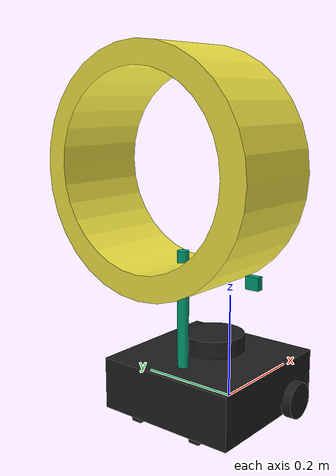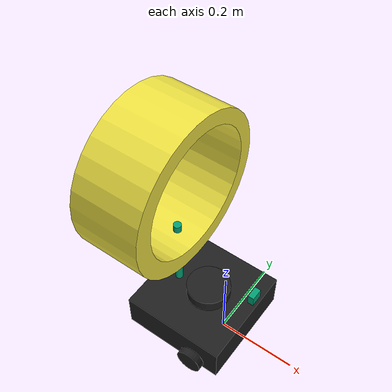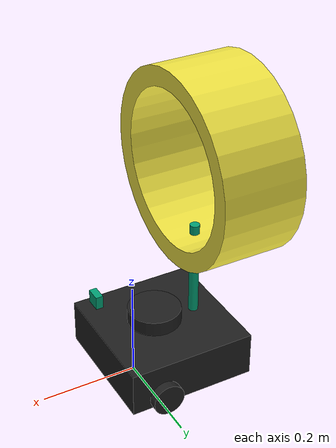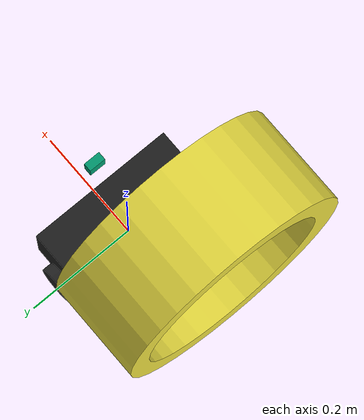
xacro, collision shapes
<?xml version="1.0" ?>
<robot name="turtlebot3_waffle_pi" xmlns:xacro="http://ros.org/wiki/xacro">
  <xacro:include filename="$(find turtlebot3_description)/urdf/common_properties.xacro"/>
  <xacro:include filename="$(find turtlebot3_description)/urdf/turtlebot3_waffle_pi.gazebo.xacro"/>

  <link name="base_footprint"/>

  <joint name="base_joint" type="fixed">
    <parent link="base_footprint"/>
    <child link="base_link" />
    <origin xyz="0 0 0.010" rpy="0 0 0"/>
  </joint>

  <link name="base_link">
    <visual>
      <origin xyz="-0.064 0 0.0" rpy="0 0 0"/>
      <geometry>
        <mesh filename="package://turtlebot3_description/meshes/bases/waffle_pi_base.stl" scale="0.001 0.001 0.001"/>
      </geometry>
      <material name="light_black"/>
    </visual>

    <collision>
      <origin xyz="-0.064 0 0.047" rpy="0 0 0"/>
      <geometry>
        <box size="0.266 0.266 0.094"/>
      </geometry>
    </collision>

    <inertial>
      <origin xyz="0 0 0" rpy="0 0 0"/>
      <mass value="1.3729096e+00"/>
      <inertia ixx="8.7002718e-03" ixy="-4.7576583e-05" ixz="1.1160499e-04"
               iyy="8.6195418e-03" iyz="-3.5422299e-06"
               izz="1.4612727e-02" />
    </inertial>
  </link>

  <!-- MY STUFF -->
  <link name="arm_link">
    <inertial>
        <mass value="0.18" />
        <inertia ixx="0.0002835" ixy="0.0" ixz="0.0" iyy="0.0002835" iyz="0.0" izz="0.000324" />
    </inertial>
    <origin rpy="0.0 0.0 0.0" xyz="0.0 0.0 0.16" />
    <collision>
      <geometry>
        <cylinder length=".3" radius=".01" />
      </geometry>
    </collision>
    <visual>
      <geometry>
        <cylinder length=".3" radius=".01" />
      </geometry>
    </visual>
  </link>

  <joint name="base_to_arm_joint" type="revolute">
    <parent link="base_link"/>
    <child link="arm_link"/>
    <limit effort="1000.0" lower="-1.57" upper=".3" velocity="0.5"/>
    <axis xyz="0 1 0"/>
    <origin xyz="-0.14 0.0 0.15" rpy="0.0 0.0 0.0"/>
  </joint>

  <link name="catcher_link">
    <inertial>
        <mass value="0.001" />
        <inertia ixx="0.0002835" ixy="0.0" ixz="0.0" iyy="0.0002835" iyz="0.0" izz="0.000324" />
    </inertial>
    <origin rpy="0 1.57 0" xyz="0.0 0.0 0.0" />
    <collision>
      <origin rpy="0 1.57 0" xyz="0.0 0.0 0.0" />
      <geometry>
        <mesh filename="package://fetch/tube.stl" scale="0.4 0.4 0.3"/>
      </geometry>
      <surface>
        <friction>
          <mu>0.01</mu>
          <mu2>0.01</mu2>
        </friction>
      </surface>
    </collision>
    <visual>
      <origin rpy="0 1.57 0" xyz="0.0 0.0 0.0" />
      <geometry>
        <mesh filename="package://fetch/tube.stl" scale="0.4 0.4 0.3"/>
      </geometry>
    </visual>
  </link>

  <joint name="arm_to_catcher_joint" type="continuous">
    <parent link="arm_link"/>
    <child link="catcher_link"/>
    <axis xyz="1 0 0"/>

    <origin xyz="-.11 0.0 0.28" rpy="0.0 0.0 0.0"/>
  </joint>

  <!-- ROS Control plugin for Gazebo -->
  <gazebo>
    <plugin name="gazebo_ros_control" filename="libgazebo_ros_control.so">
      <robotNamespace>/control</robotNamespace>
      <legacyModeNS>true</legacyModeNS>
    </plugin>
  </gazebo>

  <!-- transmission -->
  <transmission name="base_to_arm_trans">
    <type>transmission_interface/SimpleTransmission</type>
    <actuator name="motor1">
      <mechanicalReduction>1</mechanicalReduction>
    </actuator>
    <joint name="base_to_arm_joint">
      <hardwareInterface>hardware_interface/EffortJointInterface</hardwareInterface>
    </joint>
  </transmission>

  <!-- END MY STUFF -->

  <joint name="wheel_left_joint" type="continuous">
    <parent link="base_link"/>
    <child link="wheel_left_link"/>
    <origin xyz="0.0 0.144 0.023" rpy="-1.57 0 0"/>
    <axis xyz="0 0 1"/>
  </joint>

  <link name="wheel_left_link">
    <visual>
      <origin xyz="0 0 0" rpy="1.57 0 0"/>
      <geometry>
        <mesh filename="package://turtlebot3_description/meshes/wheels/left_tire.stl" scale="0.001 0.001 0.001"/>
      </geometry>
      <material name="dark"/>
    </visual>

    <collision>
      <origin xyz="0 0 0" rpy="0 0 0"/>
      <geometry>
        <cylinder length="0.018" radius="0.033"/>
      </geometry>
    </collision>

    <inertial>
      <origin xyz="0 0 0" />
      <mass value="2.8498940e-02" />
      <inertia ixx="1.1175580e-05" ixy="-4.2369783e-11" ixz="-5.9381719e-09"
               iyy="1.1192413e-05" iyz="-1.4400107e-11"
               izz="2.0712558e-05" />
      </inertial>
  </link>

  <joint name="wheel_right_joint" type="continuous">
    <parent link="base_link"/>
    <child link="wheel_right_link"/>
    <origin xyz="0.0 -0.144 0.023" rpy="-1.57 0 0"/>
    <axis xyz="0 0 1"/>
  </joint>

  <link name="wheel_right_link">
    <visual>
      <origin xyz="0 0 0" rpy="1.57 0 0"/>
      <geometry>
        <mesh filename="package://turtlebot3_description/meshes/wheels/right_tire.stl" scale="0.001 0.001 0.001"/>
      </geometry>
      <material name="dark"/>
    </visual>

    <collision>
      <origin xyz="0 0 0" rpy="0 0 0"/>
      <geometry>
        <cylinder length="0.018" radius="0.033"/>
      </geometry>
    </collision>

    <inertial>
      <origin xyz="0 0 0" />
      <mass value="2.8498940e-02" />
      <inertia ixx="1.1175580e-05" ixy="-4.2369783e-11" ixz="-5.9381719e-09"
               iyy="1.1192413e-05" iyz="-1.4400107e-11"
               izz="2.0712558e-05" />
      </inertial>
  </link>

  <joint name="caster_back_right_joint" type="fixed">
    <parent link="base_link"/>
    <child link="caster_back_right_link"/>
    <origin xyz="-0.177 -0.064 -0.004" rpy="-1.57 0 0"/>
  </joint>

  <link name="caster_back_right_link">
    <collision>
      <origin xyz="0 0.001 0" rpy="0 0 0"/>
      <geometry>
        <box size="0.030 0.009 0.020"/>
      </geometry>
    </collision>

    <inertial>
      <origin xyz="0 0 0" />
      <mass value="0.005" />
      <inertia ixx="0.001" ixy="0.0" ixz="0.0"
               iyy="0.001" iyz="0.0"
               izz="0.001" />
    </inertial>
  </link>

  <joint name="caster_back_left_joint" type="fixed">
    <parent link="base_link"/>
    <child link="caster_back_left_link"/>
    <origin xyz="-0.177 0.064 -0.004" rpy="-1.57 0 0"/>
  </joint>

  <link name="caster_back_left_link">
    <collision>
      <origin xyz="0 0.001 0" rpy="0 0 0"/>
      <geometry>
        <box size="0.030 0.009 0.020"/>
      </geometry>
    </collision>

    <inertial>
      <origin xyz="0 0 0" />
      <mass value="0.005" />
      <inertia ixx="0.001" ixy="0.0" ixz="0.0"
               iyy="0.001" iyz="0.0"
               izz="0.001" />
    </inertial>
  </link>

  <joint name="imu_joint" type="fixed">
    <parent link="base_link"/>
    <child link="imu_link"/>
    <origin xyz="0.0 0 0.068" rpy="0 0 0"/>
  </joint>

  <link name="imu_link"/>

  <joint name="scan_joint" type="fixed">
    <parent link="base_link"/>
    <child link="base_scan"/>
    <origin xyz="-0.064 0 0.122" rpy="0 0 0"/>
  </joint>

  <link name="base_scan">
    <visual>
      <origin xyz="0 0 0.0" rpy="0 0 0"/>
      <geometry>
        <mesh filename="package://turtlebot3_description/meshes/sensors/lds.stl" scale="0.001 0.001 0.001"/>
      </geometry>
      <material name="dark"/>
    </visual>
    <collision>
      <origin xyz="0.015 0 -0.0065" rpy="0 0 0"/>
      <geometry>
        <cylinder length="0.0315" radius="0.055"/>
      </geometry>
    </collision>

    <inertial>
      <mass value="0.114" />
      <origin xyz="0 0 0" />
      <inertia ixx="0.001" ixy="0.0" ixz="0.0"
               iyy="0.001" iyz="0.0"
               izz="0.001" />
    </inertial>
  </link>

  <joint name="camera_joint" type="fixed">
    <origin xyz="0.073 -0.011 0.184" rpy="0 0 0"/>
    <parent link="base_link"/>
    <child link="camera_link"/>
  </joint>

  <link name="camera_link">
    <collision>
      <origin xyz="0.005 0.011 0.013" rpy="0 0 0"/>
      <geometry>
        <box size="0.015 0.030 0.027"/>
      </geometry>
    </collision>
  </link>

  <joint name="camera_rgb_joint" type="fixed">
    <origin xyz="0.003 0.011 0.009" rpy="0 0 0"/>
    <parent link="camera_link"/>
    <child link="camera_rgb_frame"/>
  </joint>
  <link name="camera_rgb_frame"/>

  <joint name="camera_rgb_optical_joint" type="fixed">
    <origin xyz="0 0 0" rpy="-1.57 0 -1.57"/>
    <parent link="camera_rgb_frame"/>
    <child link="camera_rgb_optical_frame"/>
  </joint>
  <link name="camera_rgb_optical_frame"/>

</robot>
